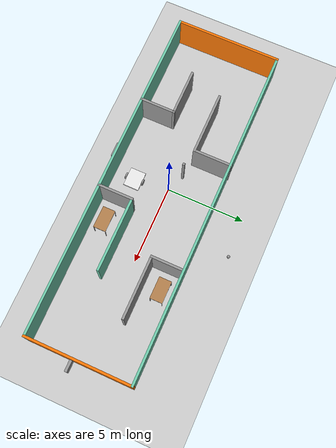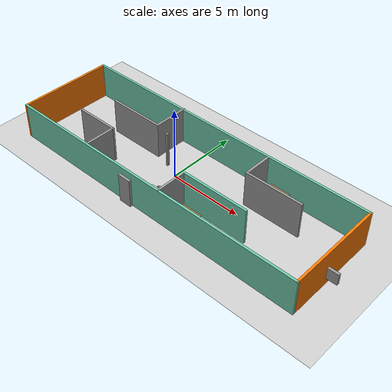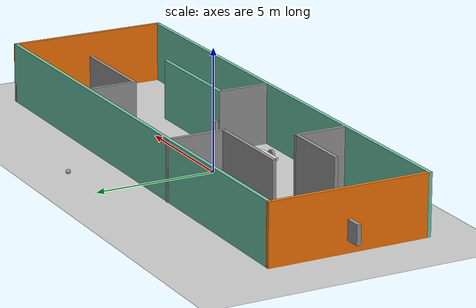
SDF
<sdf version="1.6">
 <world name="default">
  <model name="ground_plane">
   <static>1</static>
   <link name="link_ground_plane">
    <collision name="collision">
     <geometry><plane><normal>0 0 1</normal><size>100 100</size></plane></geometry>
     <surface><friction><ode><mu>100</mu><mu2>50</mu2></ode></friction></surface>
    </collision>
    <visual name="visual">
     <cast_shadows>0</cast_shadows>
     <geometry><plane><normal>0 0 1</normal><size>100 100</size></plane></geometry>
     <material>
      <script><uri>file://media/materials/scripts/gazebo.material</uri><name>Gazebo/Grey</name></script>
     </material>
    </visual>
   </link>
  </model>
  <model name="Robot">
   <link name="link_0">
    <inertial>
     <mass>1</mass>
     <inertia>
      <ixx>0.166667</ixx>
      <ixy>0</ixy>
      <ixz>0</ixz>
      <iyy>0.166667</iyy>
      <iyz>0</iyz>
      <izz>0.166667</izz>
     </inertia>
     <pose>0 0 0.2 0 -0 0</pose>
    </inertial>
    <visual name="visual">
     <geometry><box><size>1.2 1 0.1</size></box></geometry>
     <material>
      <lighting>1</lighting>
      <script><uri>file://media/materials/scripts/gazebo.material</uri><name>Gazebo/White</name></script>
      <ambient>0.3 0.3 0.3 1</ambient>
      <diffuse>1 0 0 1.0</diffuse>
      <specular>0.01 0.01 0.01 1</specular>
      <emissive>0 0 0 1</emissive>
      <shader type="vertex"><normal_map>__default__</normal_map></shader>
     </material>
    </visual>
    <collision name="collision">
     <geometry><box><size>1.2 1 0.1</size></box></geometry>
     <surface>
      <friction>
       <ode><mu>1</mu><mu2>1</mu2><fdir1>0 0 0</fdir1><slip1>0</slip1><slip2>0</slip2></ode>
       <torsional>
        <coefficient>1</coefficient>
        <patch_radius>0</patch_radius>
        <surface_radius>0</surface_radius>
        <use_patch_radius>1</use_patch_radius>
        <ode><slip>0</slip></ode>
       </torsional>
      </friction>
      <bounce><restitution_coefficient>0</restitution_coefficient><threshold>1e+06</threshold></bounce>
      <contact>
       <collide_without_contact>0</collide_without_contact>
       <collide_without_contact_bitmask>1</collide_without_contact_bitmask>
       <collide_bitmask>1</collide_bitmask>
       <ode>
        <soft_cfm>0</soft_cfm>
        <soft_erp>0.2</soft_erp>
        <kp>1e+13</kp>
        <kd>1</kd>
        <max_vel>0.01</max_vel>
        <min_depth>0</min_depth>
       </ode>
       <bullet>
        <split_impulse>1</split_impulse>
        <split_impulse_penetration_threshold>-0.01</split_impulse_penetration_threshold>
        <soft_cfm>0</soft_cfm>
        <soft_erp>0.2</soft_erp>
        <kp>1e+13</kp>
        <kd>1</kd>
       </bullet>
      </contact>
     </surface>
    </collision>
    <collision name="caster_collision">
     <pose>-0.5 -0.05 -0.05 0 0 0</pose>
     <geometry><sphere><radius>.1</radius></sphere></geometry>
     <surface><friction><ode><mu>0</mu><mu2>0</mu2><slip1>1.0</slip1><slip2>1.0</slip2></ode></friction></surface>
    </collision>
    <visual name="caster_visual">
     <pose>-0.5 -0.05 -0.05 0 0 0</pose>
     <geometry><sphere><radius>.1</radius></sphere></geometry>
    </visual>
   </link>
   <link name="link_1">
    <pose>0 -0.550001 0 1.5708 -0 0</pose>
    <inertial>
     <mass>1</mass>
     <inertia><ixx>0.145833</ixx><ixy>0</ixy><ixz>0</ixz><iyy>0.145833</iyy><iyz>0</iyz><izz>0.125</izz></inertia>
    </inertial>
    <visual name="visual">
     <geometry><cylinder><radius>0.2</radius><length>0.1</length></cylinder></geometry>
     <material>
      <lighting>1</lighting>
      <script><uri>file://media/materials/scripts/gazebo.material</uri><name>Gazebo/Grey</name></script>
      <ambient>0.3 0.3 0.3 1</ambient>
      <diffuse>0.7 0.7 0.7 1</diffuse>
      <specular>0.01 0.01 0.01 1</specular>
      <emissive>0 0 0 1</emissive>
      <shader type="vertex"><normal_map>__default__</normal_map></shader>
     </material>
    </visual>
    <collision name="collision">
     <geometry><cylinder><radius>0.2</radius><length>0.1</length></cylinder></geometry>
     <surface>
      <friction>
       <ode><mu>1</mu><mu2>1</mu2><fdir1>0 0 0</fdir1><slip1>0</slip1><slip2>0</slip2></ode>
       <torsional>
        <coefficient>1</coefficient>
        <patch_radius>0</patch_radius>
        <surface_radius>0</surface_radius>
        <use_patch_radius>1</use_patch_radius>
        <ode><slip>0</slip></ode>
       </torsional>
      </friction>
      <bounce><restitution_coefficient>0</restitution_coefficient><threshold>1e+06</threshold></bounce>
      <contact>
       <collide_without_contact>0</collide_without_contact>
       <collide_without_contact_bitmask>1</collide_without_contact_bitmask>
       <collide_bitmask>1</collide_bitmask>
       <ode>
        <soft_cfm>0</soft_cfm>
        <soft_erp>0.2</soft_erp>
        <kp>1e+13</kp>
        <kd>1</kd>
        <max_vel>0.01</max_vel>
        <min_depth>0</min_depth>
       </ode>
       <bullet>
        <split_impulse>1</split_impulse>
        <split_impulse_penetration_threshold>-0.01</split_impulse_penetration_threshold>
        <soft_cfm>0</soft_cfm>
        <soft_erp>0.2</soft_erp>
        <kp>1e+13</kp>
        <kd>1</kd>
       </bullet>
      </contact>
     </surface>
    </collision>
   </link>
   <link name="link_1_clone">
    <pose>0 0.550001 0 1.5708 -0 0</pose>
    <inertial>
     <mass>1</mass>
     <inertia><ixx>0.145833</ixx><ixy>0</ixy><ixz>0</ixz><iyy>0.145833</iyy><iyz>0</iyz><izz>0.125</izz></inertia>
    </inertial>
    <visual name="visual">
     <geometry><cylinder><radius>0.2</radius><length>0.1</length></cylinder></geometry>
     <material>
      <lighting>1</lighting>
      <script><uri>file://media/materials/scripts/gazebo.material</uri><name>Gazebo/Grey</name></script>
      <ambient>0.3 0.3 0.3 1</ambient>
      <diffuse>0.7 0.7 0.7 1</diffuse>
      <specular>0.01 0.01 0.01 1</specular>
      <emissive>0 0 0 1</emissive>
      <shader type="vertex"><normal_map>__default__</normal_map></shader>
     </material>
    </visual>
    <collision name="collision">
     <geometry><cylinder><radius>0.2</radius><length>0.1</length></cylinder></geometry>
     <surface>
      <friction>
       <ode><mu>1</mu><mu2>1</mu2><fdir1>0 0 0</fdir1><slip1>0</slip1><slip2>0</slip2></ode>
       <torsional>
        <coefficient>1</coefficient>
        <patch_radius>0</patch_radius>
        <surface_radius>0</surface_radius>
        <use_patch_radius>1</use_patch_radius>
        <ode><slip>0</slip></ode>
       </torsional>
      </friction>
      <bounce><restitution_coefficient>0</restitution_coefficient><threshold>1e+06</threshold></bounce>
      <contact>
       <collide_without_contact>0</collide_without_contact>
       <collide_without_contact_bitmask>1</collide_without_contact_bitmask>
       <collide_bitmask>1</collide_bitmask>
       <ode>
        <soft_cfm>0</soft_cfm>
        <soft_erp>0.2</soft_erp>
        <kp>1e+13</kp>
        <kd>1</kd>
        <max_vel>0.01</max_vel>
        <min_depth>0</min_depth>
       </ode>
       <bullet>
        <split_impulse>1</split_impulse>
        <split_impulse_penetration_threshold>-0.01</split_impulse_penetration_threshold>
        <soft_cfm>0</soft_cfm>
        <soft_erp>0.2</soft_erp>
        <kp>1e+13</kp>
        <kd>1</kd>
       </bullet>
      </contact>
     </surface>
    </collision>
   </link>
   <joint name="link_0_JOINT_0" type="revolute">
    <parent>link_0</parent>
    <child>link_1</child>
    <axis>
     <xyz>0 0 1</xyz>
     <use_parent_model_frame>0</use_parent_model_frame>
     <limit>
      <lower>-1.79769e+308</lower>
      <upper>1.79769e+308</upper>
      <effort>-1</effort>
      <velocity>-1</velocity>
     </limit>
     <dynamics>
      <spring_reference>0</spring_reference>
      <spring_stiffness>0</spring_stiffness>
      <damping>0</damping>
     </dynamics>
    </axis>
    <physics>
     <ode><limit><cfm>0</cfm><erp>0.2</erp></limit><suspension><cfm>0</cfm><erp>0.2</erp></suspension></ode>
    </physics>
   </joint>
   <joint name="link_0_JOINT_1" type="revolute">
    <parent>link_0</parent>
    <child>link_1_clone</child>
    <axis>
     <xyz>0 0 1</xyz>
     <use_parent_model_frame>0</use_parent_model_frame>
     <limit>
      <lower>-1.79769e+308</lower>
      <upper>1.79769e+308</upper>
      <effort>-1</effort>
      <velocity>-1</velocity>
     </limit>
     <dynamics>
      <spring_reference>0</spring_reference>
      <spring_stiffness>0</spring_stiffness>
      <damping>0</damping>
     </dynamics>
    </axis>
    <physics>
     <ode><limit><cfm>0</cfm><erp>0.2</erp></limit><suspension><cfm>0</cfm><erp>0.2</erp></suspension></ode>
    </physics>
   </joint>
   <static>0</static>
   <pose>0.276626 -2.17878 0.199998 -4e-06 0 0</pose>
  </model>
  <model name="Building">
   <pose>0.945519 -0.24528 0 0 -0 0</pose>
   <link name="Door_0">
    <collision name="Door_0_Collision">
     <geometry><box><size>0.9 0.17 2</size></box></geometry>
     <pose>0 0 1 0 -0 0</pose>
    </collision>
    <visual name="Door_0_Visual">
     <pose>0 0 1 0 -0 0</pose>
     <geometry><box><size>0.9 0.17 2</size></box></geometry>
     <material>
      <script><uri>file://media/materials/scripts/gazebo.material</uri><name>Gazebo/Grey</name></script>
     </material>
    </visual>
    <pose>-1.39357 -3.49419 0 0 -0 0</pose>
   </link>
   <link name="Wall_1">
    <collision name="Wall_1_Collision">
     <geometry><box><size>0.15 0.15 2.5</size></box></geometry>
     <pose>0 0 1.25 0 -0 0</pose>
    </collision>
    <visual name="Wall_1_Visual">
     <pose>0 0 1.25 0 -0 0</pose>
     <geometry><box><size>0.15 0.15 2.5</size></box></geometry>
     <material>
      <script><uri>file://media/materials/scripts/gazebo.material</uri><name>Gazebo/Grey</name></script>
      <ambient>1 1 1 1</ambient>
     </material>
    </visual>
    <pose>-2.04404 0.733127 0 0 -0 0</pose>
   </link>
   <link name="Wall_10">
    <collision name="Wall_10_Collision">
     <geometry><box><size>4 0.15 2.5</size></box></geometry>
     <pose>0 0 1.25 0 -0 0</pose>
    </collision>
    <visual name="Wall_10_Visual">
     <pose>0 0 1.25 0 -0 0</pose>
     <geometry><box><size>4 0.15 2.5</size></box></geometry>
     <material>
      <script><uri>file://media/materials/scripts/gazebo.material</uri><name>Gazebo/Grey</name></script>
      <ambient>1 1 1 1</ambient>
     </material>
    </visual>
    <pose>-5.04258 0.96914 0 0 -0 3.14159</pose>
   </link>
   <link name="Wall_12">
    <collision name="Wall_12_Collision">
     <geometry><box><size>2.5 0.15 2.5</size></box></geometry>
     <pose>0 0 1.25 0 -0 0</pose>
    </collision>
    <visual name="Wall_12_Visual">
     <pose>0 0 1.25 0 -0 0</pose>
     <geometry><box><size>2.5 0.15 2.5</size></box></geometry>
     <material>
      <script><uri>file://media/materials/scripts/gazebo.material</uri><name>Gazebo/Grey</name></script>
      <ambient>1 1 1 1</ambient>
     </material>
    </visual>
    <pose>-3.11758 2.14414 0 0 -0 1.5708</pose>
   </link>
   <link name="Wall_14">
    <collision name="Wall_14_Collision">
     <geometry><box><size>2 0.15 2.5</size></box></geometry>
     <pose>0 0 1.25 0 -0 0</pose>
    </collision>
    <visual name="Wall_14_Visual">
     <pose>0 0 1.25 0 -0 0</pose>
     <geometry><box><size>2 0.15 2.5</size></box></geometry>
     <material>
      <script><uri>file://media/materials/scripts/gazebo.material</uri><name>Gazebo/Grey</name></script>
      <ambient>1 1 1 1</ambient>
     </material>
    </visual>
    <pose>3.83894 2.20463 0 0 0 -1.5708</pose>
   </link>
   <link name="Wall_15">
    <collision name="Wall_15_Collision">
     <geometry><box><size>4 0.15 2.5</size></box></geometry>
     <pose>0 0 1.25 0 -0 0</pose>
    </collision>
    <visual name="Wall_15_Visual">
     <pose>0 0 1.25 0 -0 0</pose>
     <geometry><box><size>4 0.15 2.5</size></box></geometry>
     <material>
      <script><uri>file://media/materials/scripts/gazebo.material</uri><name>Gazebo/Grey</name></script>
      <ambient>1 1 1 1</ambient>
     </material>
    </visual>
    <pose>5.76394 1.27963 0 0 -0 0</pose>
   </link>
   <link name="Wall_17">
    <collision name="Wall_17_Collision">
     <geometry><box><size>2.25 0.15 2.5</size></box></geometry>
     <pose>0 0 1.25 0 -0 0</pose>
    </collision>
    <visual name="Wall_17_Visual">
     <pose>0 0 1.25 0 -0 0</pose>
     <geometry><box><size>2.25 0.15 2.5</size></box></geometry>
     <material>
      <script><uri>file://media/materials/scripts/gazebo.material</uri><name>Gazebo/Grey</name></script>
      <ambient>1 1 1 1</ambient>
     </material>
    </visual>
    <pose>1.17732 -2.23247 0 0 -0 1.5708</pose>
   </link>
   <link name="Wall_18">
    <collision name="Wall_18_Collision">
     <geometry><box><size>4.75 0.15 2.5</size></box></geometry>
     <pose>0 0 1.25 0 -0 0</pose>
    </collision>
    <visual name="Wall_18_Visual">
     <pose>0 0 1.25 0 -0 0</pose>
     <geometry><box><size>4.75 0.15 2.5</size></box></geometry>
     <material>
      <script><uri>file://media/materials/scripts/gazebo.material</uri><name>Gazebo/Grey</name></script>
      <ambient>0.435294 0.796078 0.67451 1</ambient>
     </material>
    </visual>
    <pose>3.47732 -1.18247 0 0 -0 0</pose>
   </link>
   <link name="Wall_20">
    <collision name="Wall_20_Collision">
     <geometry><box><size>2.25 0.15 2.5</size></box></geometry>
     <pose>0 0 1.25 0 -0 0</pose>
    </collision>
    <visual name="Wall_20_Visual">
     <pose>0 0 1.25 0 -0 0</pose>
     <geometry><box><size>2.25 0.15 2.5</size></box></geometry>
     <material>
      <script><uri>file://media/materials/scripts/gazebo.material</uri><name>Gazebo/Grey</name></script>
      <ambient>1 1 1 1</ambient>
     </material>
    </visual>
    <pose>-4.90208 -2.23247 0 0 -0 1.5708</pose>
   </link>
   <link name="Wall_21">
    <collision name="Wall_21_Collision">
     <geometry><box><size>3 0.15 2.5</size></box></geometry>
     <pose>0 0 1.25 0 -0 0</pose>
    </collision>
    <visual name="Wall_21_Visual">
     <pose>0 0 1.25 0 -0 0</pose>
     <geometry><box><size>3 0.15 2.5</size></box></geometry>
     <material>
      <script><uri>file://media/materials/scripts/gazebo.material</uri><name>Gazebo/Grey</name></script>
      <ambient>1 1 1 1</ambient>
     </material>
    </visual>
    <pose>-6.32708 -1.18247 0 0 -0 3.14159</pose>
   </link>
   <link name="Wall_3">
    <collision name="Wall_3_Collision">
     <geometry><box><size>21.75 0.15 2.5</size></box></geometry>
     <pose>0 0 1.25 0 -0 0</pose>
    </collision>
    <visual name="Wall_3_Visual">
     <pose>0 0 1.25 0 -0 0</pose>
     <geometry><box><size>21.75 0.15 2.5</size></box></geometry>
     <material>
      <script><uri>file://media/materials/scripts/gazebo.material</uri><name>Gazebo/Grey</name></script>
      <ambient>0.435294 0.796078 0.67451 1</ambient>
     </material>
    </visual>
    <pose>0 3.28086 0 0 -0 0</pose>
   </link>
   <link name="Wall_4">
    <collision name="Wall_4_Collision">
     <geometry><box><size>6.75 0.15 2.5</size></box></geometry>
     <pose>0 0 1.25 0 -0 0</pose>
    </collision>
    <visual name="Wall_4_Visual">
     <pose>0 0 1.25 0 -0 0</pose>
     <geometry><box><size>6.75 0.15 2.5</size></box></geometry>
     <material>
      <script><uri>file://media/materials/scripts/gazebo.material</uri><name>Gazebo/Grey</name></script>
      <ambient>0.996078 0.47451 0.0196078 1</ambient>
     </material>
    </visual>
    <pose>10.8 -0.01914 0 0 0 -1.5708</pose>
   </link>
   <link name="Wall_6">
    <collision name="Wall_6_Collision">
     <geometry><box><size>21.75 0.15 2.5</size></box></geometry>
     <pose>0 0 1.25 0 -0 0</pose>
    </collision>
    <visual name="Wall_6_Visual">
     <pose>0 0 1.25 0 -0 0</pose>
     <geometry><box><size>21.75 0.15 2.5</size></box></geometry>
     <material>
      <script><uri>file://media/materials/scripts/gazebo.material</uri><name>Gazebo/Grey</name></script>
      <ambient>0.435294 0.796078 0.67451 1</ambient>
     </material>
    </visual>
    <pose>0 -3.31914 0 0 -0 3.14159</pose>
   </link>
   <link name="Wall_7">
    <collision name="Wall_7_Collision">
     <geometry><box><size>6.75 0.15 2.5</size></box></geometry>
     <pose>0 0 1.25 0 -0 0</pose>
    </collision>
    <visual name="Wall_7_Visual">
     <pose>0 0 1.25 0 -0 0</pose>
     <geometry><box><size>6.75 0.15 2.5</size></box></geometry>
     <material>
      <script><uri>file://media/materials/scripts/gazebo.material</uri><name>Gazebo/Grey</name></script>
      <ambient>0.996078 0.47451 0.0196078 1</ambient>
     </material>
    </visual>
    <pose>-10.8 -0.01914 0 0 -0 1.5708</pose>
   </link>
   <link name="Window_0">
    <collision name="Window_0_Collision">
     <geometry><box><size>0.8 0.17 0.8</size></box></geometry>
     <pose>0 0 0.4 0 -0 0</pose>
    </collision>
    <visual name="Window_0_Visual">
     <pose>0 0 0.4 0 -0 0</pose>
     <geometry><box><size>0.8 0.17 0.8</size></box></geometry>
     <material>
      <script><uri>file://media/materials/scripts/gazebo.material</uri><name>Gazebo/Grey</name></script>
     </material>
    </visual>
    <pose>11.1887 -0.530104 0.5 0 -0 0</pose>
   </link>
   <link name="Window_1">
    <collision name="Window_1_Collision">
     <geometry><box><size>0.8 0.17 0.8</size></box></geometry>
     <pose>0 0 0.4 0 -0 0</pose>
    </collision>
    <visual name="Window_1_Visual">
     <pose>0 0 0.4 0 -0 0</pose>
     <geometry><box><size>0.8 0.17 0.8</size></box></geometry>
     <material>
      <script><uri>file://media/materials/scripts/gazebo.material</uri><name>Gazebo/Grey</name></script>
     </material>
    </visual>
    <pose>-11.1327 0.044566 0.5 0 -0 0</pose>
   </link>
   <static>1</static>
  </model>
  <model name="table">
   <static>0</static>
   <link name="link_table_1">
    <collision name="surface">
     <pose>0 0 1 0 -0 0</pose>
     <geometry><box><size>1.5 0.8 0.03</size></box></geometry>
     <surface><friction><ode><mu>0.6</mu><mu2>0.6</mu2></ode></friction></surface>
    </collision>
    <visual name="visual1">
     <pose>0 0 1 0 -0 0</pose>
     <geometry><box><size>1.4 0.8 0.04</size></box></geometry>
     <material>
      <script><uri>file://media/materials/scripts/gazebo.material</uri><name>Gazebo/Wood</name></script>
     </material>
    </visual>
    <collision name="front_left_leg">
     <pose>0.68 0.38 0.5 0 -0 0</pose>
     <geometry><cylinder><radius>0.02</radius><length>1</length></cylinder></geometry>
    </collision>
    <visual name="front_left_leg">
     <pose>0.68 0.38 0.5 0 -0 0</pose>
     <geometry><cylinder><radius>0.02</radius><length>1</length></cylinder></geometry>
     <material>
      <script><uri>file://media/materials/scripts/gazebo.material</uri><name>Gazebo/Grey</name></script>
     </material>
    </visual>
    <collision name="front_right_leg">
     <pose>0.68 -0.38 0.5 0 -0 0</pose>
     <geometry><cylinder><radius>0.02</radius><length>1</length></cylinder></geometry>
    </collision>
    <visual name="front_right_leg">
     <pose>0.68 -0.38 0.5 0 -0 0</pose>
     <geometry><cylinder><radius>0.02</radius><length>1</length></cylinder></geometry>
     <material>
      <script><uri>file://media/materials/scripts/gazebo.material</uri><name>Gazebo/Grey</name></script>
     </material>
    </visual>
    <collision name="back_right_leg">
     <pose>-0.68 -0.38 0.5 0 -0 0</pose>
     <geometry><cylinder><radius>0.02</radius><length>1</length></cylinder></geometry>
    </collision>
    <visual name="back_right_leg">
     <pose>-0.68 -0.38 0.5 0 -0 0</pose>
     <geometry><cylinder><radius>0.02</radius><length>1</length></cylinder></geometry>
     <material>
      <script><uri>file://media/materials/scripts/gazebo.material</uri><name>Gazebo/Grey</name></script>
     </material>
    </visual>
    <collision name="back_left_leg">
     <pose>-0.68 0.38 0.5 0 -0 0</pose>
     <geometry><cylinder><radius>0.02</radius><length>1</length></cylinder></geometry>
    </collision>
    <visual name="back_left_leg">
     <pose>-0.68 0.38 0.5 0 -0 0</pose>
     <geometry><cylinder><radius>0.02</radius><length>1</length></cylinder></geometry>
     <material>
      <script><uri>file://media/materials/scripts/gazebo.material</uri><name>Gazebo/Grey</name></script>
     </material>
    </visual>
    <inertial>
     <inertia><ixx>1</ixx><ixy>0</ixy><ixz>0</ixz><iyy>1</iyy><iyz>0</iyz><izz>1</izz></inertia>
     <mass>1</mass>
    </inertial>
   </link>
   <pose>3.56154 -2.65063 -1e-06 -1e-06 1e-06 0</pose>
  </model>
  <model name="table_0">
   <static>0</static>
   <link name="link_table_0">
    <collision name="surface">
     <pose>0 0 1 0 -0 0</pose>
     <geometry><box><size>1.5 0.8 0.03</size></box></geometry>
     <surface><friction><ode><mu>0.6</mu><mu2>0.6</mu2></ode></friction></surface>
    </collision>
    <visual name="visual1">
     <pose>0 0 1 0 -0 0</pose>
     <geometry><box><size>1.4 0.8 0.04</size></box></geometry>
     <material>
      <script><uri>file://media/materials/scripts/gazebo.material</uri><name>Gazebo/Wood</name></script>
     </material>
    </visual>
    <collision name="front_left_leg">
     <pose>0.68 0.38 0.5 0 -0 0</pose>
     <geometry><cylinder><radius>0.02</radius><length>1</length></cylinder></geometry>
    </collision>
    <visual name="front_left_leg">
     <pose>0.68 0.38 0.5 0 -0 0</pose>
     <geometry><cylinder><radius>0.02</radius><length>1</length></cylinder></geometry>
     <material>
      <script><uri>file://media/materials/scripts/gazebo.material</uri><name>Gazebo/Grey</name></script>
     </material>
    </visual>
    <collision name="front_right_leg">
     <pose>0.68 -0.38 0.5 0 -0 0</pose>
     <geometry><cylinder><radius>0.02</radius><length>1</length></cylinder></geometry>
    </collision>
    <visual name="front_right_leg">
     <pose>0.68 -0.38 0.5 0 -0 0</pose>
     <geometry><cylinder><radius>0.02</radius><length>1</length></cylinder></geometry>
     <material>
      <script><uri>file://media/materials/scripts/gazebo.material</uri><name>Gazebo/Grey</name></script>
     </material>
    </visual>
    <collision name="back_right_leg">
     <pose>-0.68 -0.38 0.5 0 -0 0</pose>
     <geometry><cylinder><radius>0.02</radius><length>1</length></cylinder></geometry>
    </collision>
    <visual name="back_right_leg">
     <pose>-0.68 -0.38 0.5 0 -0 0</pose>
     <geometry><cylinder><radius>0.02</radius><length>1</length></cylinder></geometry>
     <material>
      <script><uri>file://media/materials/scripts/gazebo.material</uri><name>Gazebo/Grey</name></script>
     </material>
    </visual>
    <collision name="back_left_leg">
     <pose>-0.68 0.38 0.5 0 -0 0</pose>
     <geometry><cylinder><radius>0.02</radius><length>1</length></cylinder></geometry>
    </collision>
    <visual name="back_left_leg">
     <pose>-0.68 0.38 0.5 0 -0 0</pose>
     <geometry><cylinder><radius>0.02</radius><length>1</length></cylinder></geometry>
     <material>
      <script><uri>file://media/materials/scripts/gazebo.material</uri><name>Gazebo/Grey</name></script>
     </material>
    </visual>
    <inertial>
     <inertia><ixx>1</ixx><ixy>0</ixy><ixz>0</ixz><iyy>1</iyy><iyz>0</iyz><izz>1</izz></inertia>
     <mass>1</mass>
    </inertial>
   </link>
   <pose>6.10113 2.20484 -1e-06 -1e-06 1e-06 0</pose>
  </model>
  <model name="my_ball">
   <link name="link_0_my_ball">
    <inertial>
     <mass>1</mass>
     <inertia><ixx>0.1</ixx><ixy>0</ixy><ixz>0</ixz><iyy>0.1</iyy><iyz>0</iyz><izz>0.1</izz></inertia>
    </inertial>
    <visual name="visual">
     <geometry><sphere><radius>0.1</radius></sphere></geometry>
     <material>
      <lighting>1</lighting>
      <script><uri>file://media/materials/scripts/gazebo.material</uri><name>Gazebo/Grey</name></script>
      <shader type="pixel"><normal_map>__default__</normal_map></shader>
      <ambient>1 1 1 1</ambient>
      <diffuse>1 1 1 1</diffuse>
      <specular>1 1 1 1</specular>
      <emissive>1 1 1 1</emissive>
     </material>
    </visual>
    <collision name="collision">
     <geometry><sphere><radius>0.1</radius></sphere></geometry>
     <surface>
      <friction>
       <ode><mu>1</mu><mu2>1</mu2><fdir1>0 0 0</fdir1><slip1>0</slip1><slip2>0</slip2></ode>
       <torsional>
        <coefficient>1</coefficient>
        <patch_radius>0</patch_radius>
        <surface_radius>0</surface_radius>
        <use_patch_radius>1</use_patch_radius>
        <ode><slip>0</slip></ode>
       </torsional>
      </friction>
      <bounce><restitution_coefficient>0</restitution_coefficient><threshold>1e+06</threshold></bounce>
      <contact>
       <collide_without_contact>0</collide_without_contact>
       <collide_without_contact_bitmask>1</collide_without_contact_bitmask>
       <collide_bitmask>1</collide_bitmask>
       <ode>
        <soft_cfm>0</soft_cfm>
        <soft_erp>0.2</soft_erp>
        <kp>1e+13</kp>
        <kd>1</kd>
        <max_vel>0.01</max_vel>
        <min_depth>0</min_depth>
       </ode>
       <bullet>
        <split_impulse>1</split_impulse>
        <split_impulse_penetration_threshold>-0.01</split_impulse_penetration_threshold>
        <soft_cfm>0</soft_cfm>
        <soft_erp>0.2</soft_erp>
        <kp>1e+13</kp>
        <kd>1</kd>
       </bullet>
      </contact>
     </surface>
    </collision>
   </link>
   <static>0</static>
   <pose>2.4408 5.061 0.1 0 -0 0</pose>
  </model>
 </world>
</sdf>
